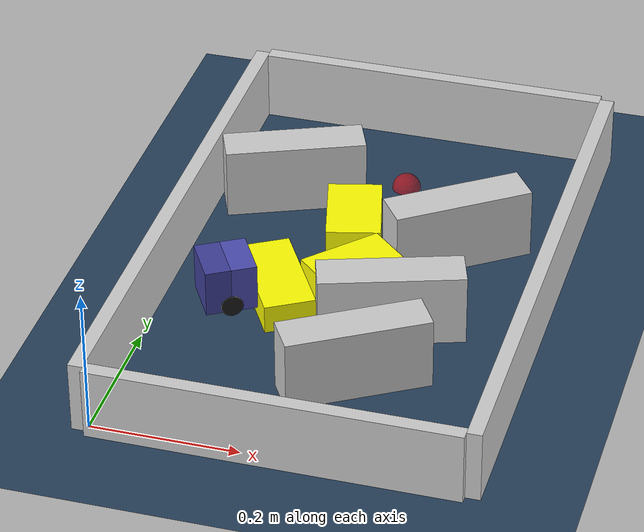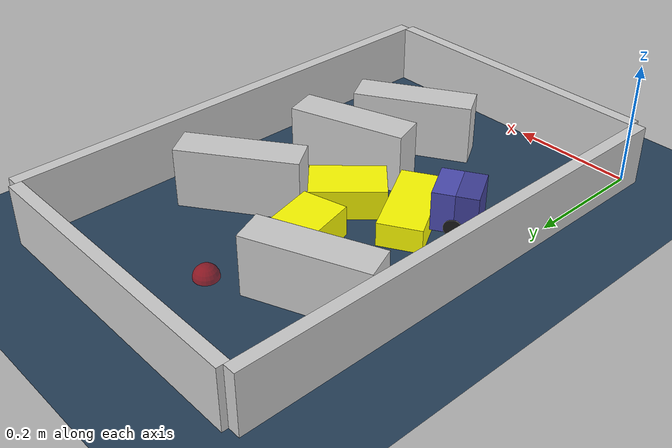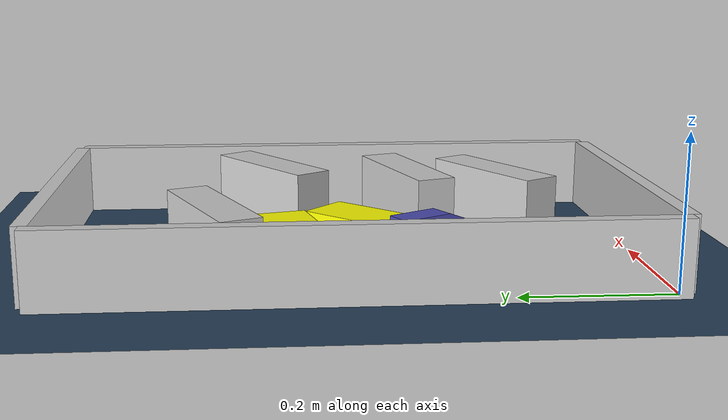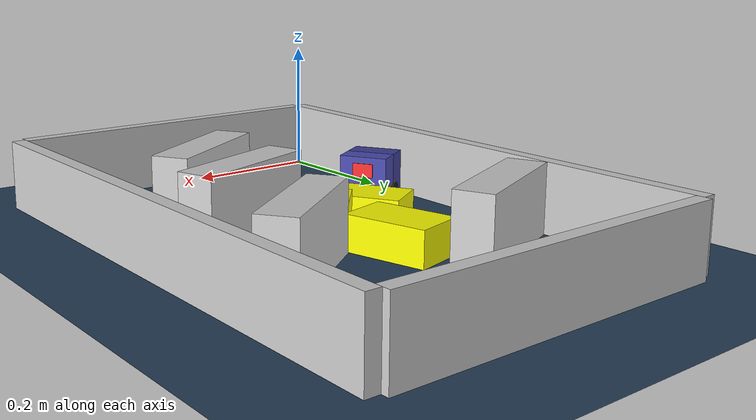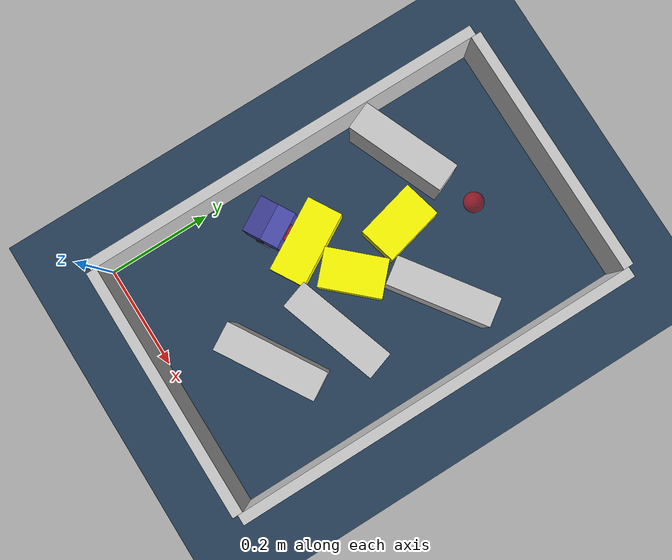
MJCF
<?xml version='1.0' encoding='utf-8'?>
<mujoco model="real_buildable">
  <compiler angle="degree" />
  <option timestep="0.002" integrator="implicitfast" iterations="100" cone="elliptic" />
  <default>
    <geom density="1" />
  </default>
  <asset>
    <texture builtin="gradient" height="3072" rgb1="0.3 0.5 0.7" rgb2="0 0 0" type="skybox" width="512" />
    <texture builtin="checker" height="300" mark="edge" markrgb="0.8 0.8 0.8" name="groundplane" rgb1="0.2 0.3 0.4" rgb2="0.1 0.2 0.3" type="2d" width="300" />
    <material name="groundplane" reflectance="0.2" texrepeat="5 5" texture="groundplane" texuniform="true" />
  </asset>
  <worldbody>
    <light dir="0 0 -1" directional="true" pos="0 0 1.5" />
    <geom name="floor" type="plane" condim="4" friction="0.5 0.005 0.001" material="groundplane" size="0 0 0.05" />
    <body name="walls">
      <geom name="wall_boundary_left" type="box" condim="4" friction="1.0 0.005 0.0001" rgba="0.8 0.8 0.8 1" pos="-0.010000 0.387500 0.050000" euler="0 0 0.000000" size="0.010000 0.397500 0.050000" />
      <geom name="wall_boundary_right" type="box" condim="4" friction="1.0 0.005 0.0001" rgba="0.8 0.8 0.8 1" pos="0.500000 0.387500 0.050000" euler="0 0 0.000000" size="0.010000 0.397500 0.050000" />
      <geom name="wall_boundary_bottom" type="box" condim="4" friction="1.0 0.005 0.0001" rgba="0.8 0.8 0.8 1" pos="0.245000 -0.010000 0.050000" euler="0 0 0.000000" size="0.245000 0.010000 0.050000" />
      <geom name="wall_boundary_top" type="box" condim="4" friction="1.0 0.005 0.0001" rgba="0.8 0.8 0.8 1" pos="0.245000 0.785000 0.050000" euler="0 0 0.000000" size="0.245000 0.010000 0.050000" />
      <geom name="wall_inner_1" type="box" condim="4" friction="1.0 0.005 0.0001" rgba="0.8 0.8 0.8 1" pos="0.298451 0.172272 0.050000" euler="0 0 211.119121" size="0.097500 0.027500 0.050000" />
      <geom name="wall_inner_2" type="box" condim="4" friction="1.0 0.005 0.0001" rgba="0.8 0.8 0.8 1" pos="0.313653 0.297541 0.050000" euler="0 0 198.430544" size="0.097500 0.027500 0.050000" />
      <geom name="wall_inner_3" type="box" condim="4" friction="1.0 0.005 0.0001" rgba="0.8 0.8 0.8 1" pos="0.102000 0.567000 0.050000" euler="0 0 22.700000" size="0.097500 0.027500 0.050000" />
      <geom name="wall_inner_4" type="box" condim="4" friction="1.0 0.005 0.0001" rgba="0.8 0.8 0.8 1" pos="0.355000 0.490000 0.050000" euler="0 0 35.400000" size="0.097500 0.027500 0.050000" />
    </body>
    <body name="car" pos="0.087232735322241434 0.29637461510714652 0.01" quat="0.96494093609276343 0 0 0.26246712146937851">
      <freejoint name="car_freejoint" />
      <inertial pos="0 0 0.0375" mass="0.35" diaginertia="0.000266 0.000266 0.000286" />
      <geom name="front_chassis_collision" type="box" pos="0.0175 0 0.0375" size="0.0175 0.035 0.0325" rgba="0.3 0.3 0.7 1" />
      <geom name="rear_chassis_collision" type="box" pos="-0.0175 0 0.0375" size="0.0175 0.035 0.0325" rgba="0.25 0.25 0.6 1" />
      <geom name="front_marker" type="box" pos="0.034 0 0.0505" size="0.002 0.015 0.01" rgba="1 0.2 0.2 1" contype="0" conaffinity="0" />
      <body name="rear_support_body" pos="-0.03 0 0.0025">
        <joint name="rear_caster_joint" type="ball" damping="0.0001" />
        <inertial pos="0 0 0" mass="0.025" diaginertia="0.000001 0.000001 0.000001" />
        <geom name="rear_support" type="sphere" pos="0 0 0" size="0.0025" friction="0 0 0" rgba="0.7 0.1 0.1 1" />
      </body>
      <body name="front_support_body" pos="0.03 0 0.0025">
        <joint name="front_caster_joint" type="ball" damping="0.0001" />
        <inertial pos="0 0 0" mass="0.025" diaginertia="0.000001 0.000001 0.000001" />
        <geom name="front_support" type="sphere" pos="0 0 0" size="0.0025" friction="0 0 0" rgba="0.1 0.7 0.1 1" />
      </body>
      <body name="left_wheel" pos="0 0.0375 0.015">
        <inertial pos="0 0 0" mass="0.05" diaginertia="0.000003 0.000006 0.000003" />
        <joint name="left_wheel_joint" type="hinge" axis="0 1 0" damping="0.01" armature="0.0001" />
        <geom name="left_wheel_collision" type="cylinder" size="0.015 0.0005" euler="90 0 0" rgba="0.1 0.1 0.1 1" />
      </body>
      <body name="right_wheel" pos="0 -0.0375 0.015">
        <inertial pos="0 0 0" mass="0.05" diaginertia="0.000003 0.000006 0.000003" />
        <joint name="right_wheel_joint" type="hinge" axis="0 1 0" damping="0.01" armature="0.0001" />
        <geom name="right_wheel_collision" type="cylinder" size="0.015 0.0005" euler="90 0 0" rgba="0.1 0.1 0.1 1" />
      </body>
    </body>
    <body name="obstacle_0_movable">
      <geom name="obstacle_0_movable" condim="4" pos="0.14650561827483694 0.33348911660178004 0.02" friction="1 0.005 0.0001" rgba="1 1 0 1" size="0.035000 0.075000 0.020000" type="box" mass="0.1" quat="0.96502334355391473 0 0 0.26216396853119039" />
      <joint type="free" />
    </body>
    <body name="obstacle_1_movable">
      <geom name="obstacle_1_movable" condim="4" pos="0.20825723724760362 0.49603362026331677 0.025000000000000001" friction="1 0.005 0.0001" rgba="1 1 0 1" size="0.037500 0.060000 0.025000" type="box" mass="0.1" quat="0.99236743802614791 0 0 0.12331613011045804" />
      <joint type="free" />
    </body>
    <body name="obstacle_2_movable">
      <geom name="obstacle_2_movable" condim="4" pos="0.24110152041371602 0.37607774115040582 0.025000000000000001" friction="1 0.005 0.0001" rgba="1 1 0 1" size="0.037500 0.060000 0.025000" type="box" mass="0.1" quat="0.36424280779962775 0 0 0.93130401962315368" />
      <joint type="free" />
    </body>
    <site name="goal" type="sphere" pos="0.245000 0.640000 0.0" size="0.02" rgba="1 0 0 0.5" />
  </worldbody>
  <actuator>
    <velocity name="left_wheel_drive" joint="left_wheel_joint" ctrlrange="-25 25" kv="0.75" forcerange="-0.5 0.5" />
    <velocity name="right_wheel_drive" joint="right_wheel_joint" ctrlrange="-25 25" kv="0.75" forcerange="-0.5 0.5" />
  </actuator>
</mujoco>
